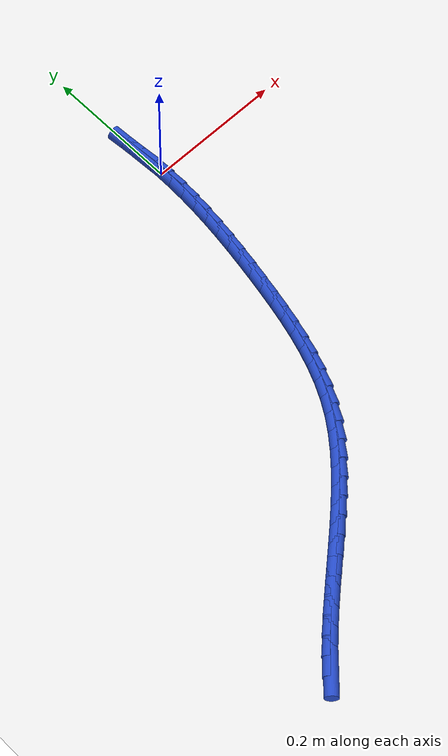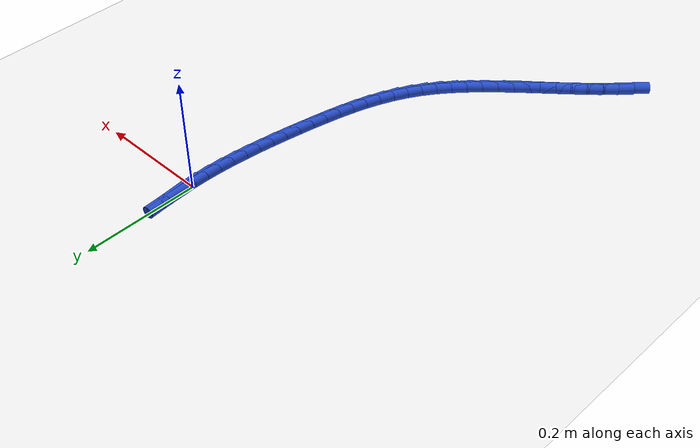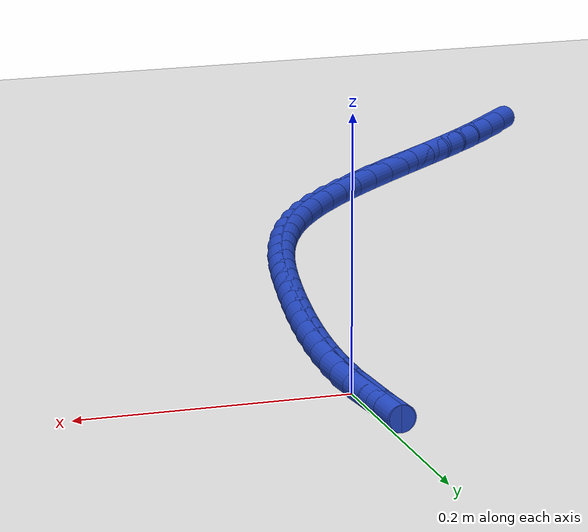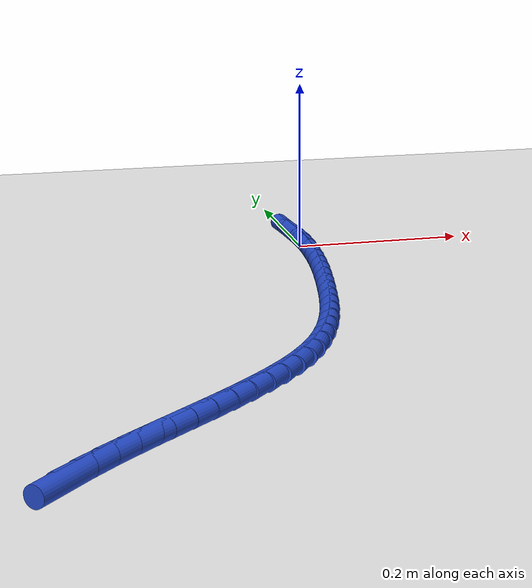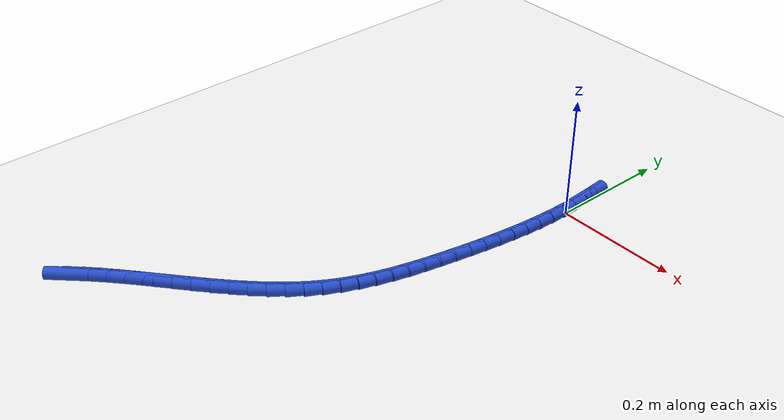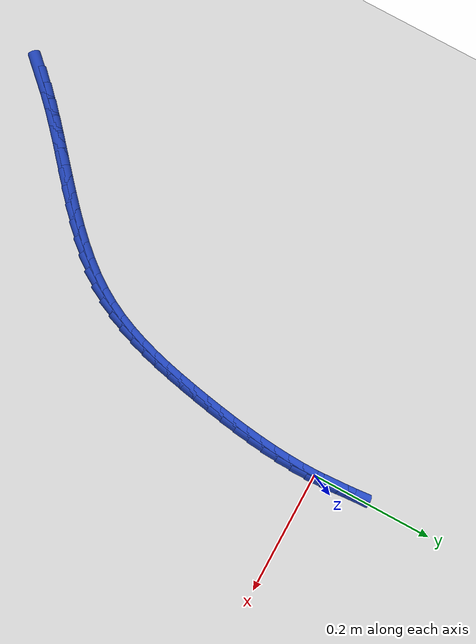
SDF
<sdf version="1.6">
 <world name="default">
  <model name="ground_plane">
   <static>1</static>
   <link name="link">
    <collision name="collision">
     <geometry><plane><normal>0 0 1</normal><size>100 100</size></plane></geometry>
     <surface><friction><ode><mu>100</mu><mu2>50</mu2></ode></friction></surface>
    </collision>
    <visual name="visual">
     <cast_shadows>0</cast_shadows>
     <geometry><plane><normal>0 0 1</normal><size>100 100</size></plane></geometry>
     <material>
      <script><uri>file://media/materials/scripts/gazebo.material</uri><name>Gazebo/WhiteGlow</name></script>
     </material>
    </visual>
   </link>
  </model>
  <model name="line">
   <link name="link_0">
    <pose>-7.806255641895632e-18 -2.0816681711721685e-17 0.01 0 1.57 -1.5404610374931598</pose>
    <collision name="collision">
     <geometry><cylinder><radius>0.01</radius><length>0.08</length></cylinder></geometry>
    </collision>
    <visual name="visual">
     <material>
      <script><name>Gazebo/Blue</name><uri>file://media/materials/scripts/gazebo.material</uri></script>
     </material>
     <geometry><cylinder><radius>0.01</radius><length>0.08</length></cylinder></geometry>
    </visual>
   </link>
   <link name="link_1">
    <pose>-0.0007810685125720414 0.025739952653974323 0.01 0 1.57 -1.5077645329489693</pose>
    <collision name="collision">
     <geometry><cylinder><radius>0.01</radius><length>0.08</length></cylinder></geometry>
    </collision>
    <visual name="visual">
     <material>
      <script><name>Gazebo/Blue</name><uri>file://media/materials/scripts/gazebo.material</uri></script>
     </material>
     <geometry><cylinder><radius>0.01</radius><length>0.08</length></cylinder></geometry>
    </visual>
   </link>
   <link name="link_2">
    <pose>-0.0024057646785755095 0.05148162766888762 0.01 0 1.57 -1.4805571677666232</pose>
    <collision name="collision">
     <geometry><cylinder><radius>0.01</radius><length>0.08</length></cylinder></geometry>
    </collision>
    <visual name="visual">
     <material>
      <script><name>Gazebo/Blue</name><uri>file://media/materials/scripts/gazebo.material</uri></script>
     </material>
     <geometry><cylinder><radius>0.01</radius><length>0.08</length></cylinder></geometry>
    </visual>
   </link>
   <link name="link_260">
    <pose>-0.3483220424559699 -0.6746312701577437 0.01 0 1.57 0.810414822637307</pose>
    <collision name="collision">
     <geometry><cylinder><radius>0.01</radius><length>0.08</length></cylinder></geometry>
    </collision>
    <visual name="visual">
     <material>
      <script><name>Gazebo/Blue</name><uri>file://media/materials/scripts/gazebo.material</uri></script>
     </material>
     <geometry><cylinder><radius>0.01</radius><length>0.08</length></cylinder></geometry>
    </visual>
   </link>
   <link name="link_261">
    <pose>-0.33001455332771323 -0.6553840926949344 0.01 0 1.57 0.7716440655538486</pose>
    <collision name="collision">
     <geometry><cylinder><radius>0.01</radius><length>0.08</length></cylinder></geometry>
    </collision>
    <visual name="visual">
     <material>
      <script><name>Gazebo/Blue</name><uri>file://media/materials/scripts/gazebo.material</uri></script>
     </material>
     <geometry><cylinder><radius>0.01</radius><length>0.08</length></cylinder></geometry>
    </visual>
   </link>
   <link name="link_262">
    <pose>-0.3106720200694595 -0.6365664513116892 0.01 0 1.57 0.7428475527422636</pose>
    <collision name="collision">
     <geometry><cylinder><radius>0.01</radius><length>0.08</length></cylinder></geometry>
    </collision>
    <visual name="visual">
     <material>
      <script><name>Gazebo/Blue</name><uri>file://media/materials/scripts/gazebo.material</uri></script>
     </material>
     <geometry><cylinder><radius>0.01</radius><length>0.08</length></cylinder></geometry>
    </visual>
   </link>
   <link name="link_263">
    <pose>-0.29052929833439456 -0.6180688902113378 0.01 0 1.57 0.7233898391511816</pose>
    <collision name="collision">
     <geometry><cylinder><radius>0.01</radius><length>0.08</length></cylinder></geometry>
    </collision>
    <visual name="visual">
     <material>
      <script><name>Gazebo/Blue</name><uri>file://media/materials/scripts/gazebo.material</uri></script>
     </material>
     <geometry><cylinder><radius>0.01</radius><length>0.08</length></cylinder></geometry>
    </visual>
   </link>
   <link name="link_264">
    <pose>-0.2698212437757043 -0.5997819535972095 0.01 0 1.57 0.7127964915039192</pose>
    <collision name="collision">
     <geometry><cylinder><radius>0.01</radius><length>0.08</length></cylinder></geometry>
    </collision>
    <visual name="visual">
     <material>
      <script><name>Gazebo/Blue</name><uri>file://media/materials/scripts/gazebo.material</uri></script>
     </material>
     <geometry><cylinder><radius>0.01</radius><length>0.08</length></cylinder></geometry>
    </visual>
   </link>
   <link name="link_265">
    <pose>-0.24878271204657537 -0.5815961856726339 0.01 0 1.57 0.710778965877923</pose>
    <collision name="collision">
     <geometry><cylinder><radius>0.01</radius><length>0.08</length></cylinder></geometry>
    </collision>
    <visual name="visual">
     <material>
      <script><name>Gazebo/Blue</name><uri>file://media/materials/scripts/gazebo.material</uri></script>
     </material>
     <geometry><cylinder><radius>0.01</radius><length>0.08</length></cylinder></geometry>
    </visual>
   </link>
   <link name="link_266">
    <pose>-0.2276485588001923 -0.5634021306409398 0.01 0 1.57 0.7172427543397212</pose>
    <collision name="collision">
     <geometry><cylinder><radius>0.01</radius><length>0.08</length></cylinder></geometry>
    </collision>
    <visual name="visual">
     <material>
      <script><name>Gazebo/Blue</name><uri>file://media/materials/scripts/gazebo.material</uri></script>
     </material>
     <geometry><cylinder><radius>0.01</radius><length>0.08</length></cylinder></geometry>
    </visual>
   </link>
   <link name="link_267">
    <pose>-0.20665363968974163 -0.5450903327054567 0.01 0 1.57 0.7322857019464921</pose>
    <collision name="collision">
     <geometry><cylinder><radius>0.01</radius><length>0.08</length></cylinder></geometry>
    </collision>
    <visual name="visual">
     <material>
      <script><name>Gazebo/Blue</name><uri>file://media/materials/scripts/gazebo.material</uri></script>
     </material>
     <geometry><cylinder><radius>0.01</radius><length>0.08</length></cylinder></geometry>
    </visual>
   </link>
   <link name="link_268">
    <pose>-0.18603281036840927 -0.5265513360695141 0.01 0 1.57 0.7561880432178371</pose>
    <collision name="collision">
     <geometry><cylinder><radius>0.01</radius><length>0.08</length></cylinder></geometry>
    </collision>
    <visual name="visual">
     <material>
      <script><name>Gazebo/Blue</name><uri>file://media/materials/scripts/gazebo.material</uri></script>
     </material>
     <geometry><cylinder><radius>0.01</radius><length>0.08</length></cylinder></geometry>
    </visual>
   </link>
   <link name="link_269">
    <pose>-0.16602092648938108 -0.5076756849364413 0.01 0 1.57 0.7893908484774422</pose>
    <collision name="collision">
     <geometry><cylinder><radius>0.01</radius><length>0.08</length></cylinder></geometry>
    </collision>
    <visual name="visual">
     <material>
      <script><name>Gazebo/Blue</name><uri>file://media/materials/scripts/gazebo.material</uri></script>
     </material>
     <geometry><cylinder><radius>0.01</radius><length>0.08</length></cylinder></geometry>
    </visual>
   </link>
   <link name="link_270">
    <pose>-0.14685284370584295 -0.4883539235095677 0.01 0 1.57 0.8324546394792258</pose>
    <collision name="collision">
     <geometry><cylinder><radius>0.01</radius><length>0.08</length></cylinder></geometry>
    </collision>
    <visual name="visual">
     <material>
      <script><name>Gazebo/Blue</name><uri>file://media/materials/scripts/gazebo.material</uri></script>
     </material>
     <geometry><cylinder><radius>0.01</radius><length>0.08</length></cylinder></geometry>
    </visual>
   </link>
   <link name="link_271">
    <pose>-0.12876341767098082 -0.46847659599222263 0.01 0 1.57 0.8859849626920132</pose>
    <collision name="collision">
     <geometry><cylinder><radius>0.01</radius><length>0.08</length></cylinder></geometry>
    </collision>
    <visual name="visual">
     <material>
      <script><name>Gazebo/Blue</name><uri>file://media/materials/scripts/gazebo.material</uri></script>
     </material>
     <geometry><cylinder><radius>0.01</radius><length>0.08</length></cylinder></geometry>
    </visual>
   </link>
   <link name="link_272">
    <pose>-0.11198750403798056 -0.4479342465877357 0.01 0 1.57 0.9505083079007879</pose>
    <collision name="collision">
     <geometry><cylinder><radius>0.01</radius><length>0.08</length></cylinder></geometry>
    </collision>
    <visual name="visual">
     <material>
      <script><name>Gazebo/Blue</name><uri>file://media/materials/scripts/gazebo.material</uri></script>
     </material>
     <geometry><cylinder><radius>0.01</radius><length>0.08</length></cylinder></geometry>
    </visual>
   </link>
   <link name="link_273">
    <pose>-0.09675995846002806 -0.4266174194994359 0.01 0 1.57 1.025266524240976</pose>
    <collision name="collision">
     <geometry><cylinder><radius>0.01</radius><length>0.08</length></cylinder></geometry>
    </collision>
    <visual name="visual">
     <material>
      <script><name>Gazebo/Blue</name><uri>file://media/materials/scripts/gazebo.material</uri></script>
     </material>
     <geometry><cylinder><radius>0.01</radius><length>0.08</length></cylinder></geometry>
    </visual>
   </link>
   <link name="link_274">
    <pose>-0.08329215274655745 -0.40442888696036344 0.01 0 1.57 1.0991313741359114</pose>
    <collision name="collision">
     <geometry><cylinder><radius>0.01</radius><length>0.08</length></cylinder></geometry>
    </collision>
    <visual name="visual">
     <material>
      <script><name>Gazebo/Blue</name><uri>file://media/materials/scripts/gazebo.material</uri></script>
     </material>
     <geometry><cylinder><radius>0.01</radius><length>0.08</length></cylinder></geometry>
    </visual>
   </link>
   <link name="link_275">
    <pose>-0.07154651962960286 -0.38140104369921063 0.01 0 1.57 1.1648577418972788</pose>
    <collision name="collision">
     <geometry><cylinder><radius>0.01</radius><length>0.08</length></cylinder></geometry>
    </collision>
    <visual name="visual">
     <material>
      <script><name>Gazebo/Blue</name><uri>file://media/materials/scripts/gazebo.material</uri></script>
     </material>
     <geometry><cylinder><radius>0.01</radius><length>0.08</length></cylinder></geometry>
    </visual>
   </link>
   <link name="link_276">
    <pose>-0.061335618649782785 -0.3576443233661018 0.01 0 1.57 1.2219398087314397</pose>
    <collision name="collision">
     <geometry><cylinder><radius>0.01</radius><length>0.08</length></cylinder></geometry>
    </collision>
    <visual name="visual">
     <material>
      <script><name>Gazebo/Blue</name><uri>file://media/materials/scripts/gazebo.material</uri></script>
     </material>
     <geometry><cylinder><radius>0.01</radius><length>0.08</length></cylinder></geometry>
    </visual>
   </link>
   <link name="link_277">
    <pose>-0.05246995222022912 -0.3332702307567666 0.01 0 1.57 1.270295466348242</pose>
    <collision name="collision">
     <geometry><cylinder><radius>0.01</radius><length>0.08</length></cylinder></geometry>
    </collision>
    <visual name="visual">
     <material>
      <script><name>Gazebo/Blue</name><uri>file://media/materials/scripts/gazebo.material</uri></script>
     </material>
     <geometry><cylinder><radius>0.01</radius><length>0.08</length></cylinder></geometry>
    </visual>
   </link>
   <link name="link_278">
    <pose>-0.04476002275407376 -0.3083902706669345 0.01 0 1.57 1.3100509610701345</pose>
    <collision name="collision">
     <geometry><cylinder><radius>0.01</radius><length>0.08</length></cylinder></geometry>
    </collision>
    <visual name="visual">
     <material>
      <script><name>Gazebo/Blue</name><uri>file://media/materials/scripts/gazebo.material</uri></script>
     </material>
     <geometry><cylinder><radius>0.01</radius><length>0.08</length></cylinder></geometry>
    </visual>
   </link>
   <link name="link_279">
    <pose>-0.03801633266444859 -0.283115947892335 0.01 0 1.57 1.341430582156113</pose>
    <collision name="collision">
     <geometry><cylinder><radius>0.01</radius><length>0.08</length></cylinder></geometry>
    </collision>
    <visual name="visual">
     <material>
      <script><name>Gazebo/Blue</name><uri>file://media/materials/scripts/gazebo.material</uri></script>
     </material>
     <geometry><cylinder><radius>0.01</radius><length>0.08</length></cylinder></geometry>
    </visual>
   </link>
   <link name="link_280">
    <pose>-0.032049384364485706 -0.25755876722869864 0.01 0 1.57 1.3646712019935838</pose>
    <collision name="collision">
     <geometry><cylinder><radius>0.01</radius><length>0.08</length></cylinder></geometry>
    </collision>
    <visual name="visual">
     <material>
      <script><name>Gazebo/Blue</name><uri>file://media/materials/scripts/gazebo.material</uri></script>
     </material>
     <geometry><cylinder><radius>0.01</radius><length>0.08</length></cylinder></geometry>
    </visual>
   </link>
   <link name="link_281">
    <pose>-0.026669680267316587 -0.23183023347175313 0.01 0 1.57 1.3800376828256702</pose>
    <collision name="collision">
     <geometry><cylinder><radius>0.01</radius><length>0.08</length></cylinder></geometry>
    </collision>
    <visual name="visual">
     <material>
      <script><name>Gazebo/Blue</name><uri>file://media/materials/scripts/gazebo.material</uri></script>
     </material>
     <geometry><cylinder><radius>0.01</radius><length>0.08</length></cylinder></geometry>
    </visual>
   </link>
   <link name="link_282">
    <pose>-0.021689620932654214 -0.20604106893402807 0.01 0 1.57 1.3918290117353656</pose>
    <collision name="collision">
     <geometry><cylinder><radius>0.01</radius><length>0.08</length></cylinder></geometry>
    </collision>
    <visual name="visual">
     <material>
      <script><name>Gazebo/Blue</name><uri>file://media/materials/scripts/gazebo.material</uri></script>
     </material>
     <geometry><cylinder><radius>0.01</radius><length>0.08</length></cylinder></geometry>
    </visual>
   </link>
   <link name="link_283">
    <pose>-0.017025594470649698 -0.18025912857937731 0.01 0 1.57 1.4063764953381221</pose>
    <collision name="collision">
     <geometry><cylinder><radius>0.01</radius><length>0.08</length></cylinder></geometry>
    </collision>
    <visual name="visual">
     <material>
      <script><name>Gazebo/Blue</name><uri>file://media/materials/scripts/gazebo.material</uri></script>
     </material>
     <geometry><cylinder><radius>0.01</radius><length>0.08</length></cylinder></geometry>
    </visual>
   </link>
   <link name="link_284">
    <pose>-0.012749720475785627 -0.1544880693420797 0.01 0 1.57 1.4242398456095378</pose>
    <collision name="collision">
     <geometry><cylinder><radius>0.01</radius><length>0.08</length></cylinder></geometry>
    </collision>
    <visual name="visual">
     <material>
      <script><name>Gazebo/Blue</name><uri>file://media/materials/scripts/gazebo.material</uri></script>
     </material>
     <geometry><cylinder><radius>0.01</radius><length>0.08</length></cylinder></geometry>
    </visual>
   </link>
   <link name="link_285">
    <pose>-0.008946897549552172 -0.12872628019744398 0.01 0 1.57 1.445462462079666</pose>
    <collision name="collision">
     <geometry><cylinder><radius>0.01</radius><length>0.08</length></cylinder></geometry>
    </collision>
    <visual name="visual">
     <material>
      <script><name>Gazebo/Blue</name><uri>file://media/materials/scripts/gazebo.material</uri></script>
     </material>
     <geometry><cylinder><radius>0.01</radius><length>0.08</length></cylinder></geometry>
    </visual>
   </link>
   <link name="link_286">
    <pose>-0.005702024293439496 -0.10297215012077889 0.01 0 1.57 1.4700812088517399</pose>
    <collision name="collision">
     <geometry><cylinder><radius>0.01</radius><length>0.08</length></cylinder></geometry>
    </collision>
    <visual name="visual">
     <material>
      <script><name>Gazebo/Blue</name><uri>file://media/materials/scripts/gazebo.material</uri></script>
     </material>
     <geometry><cylinder><radius>0.01</radius><length>0.08</length></cylinder></geometry>
    </visual>
   </link>
   <link name="link_287">
    <pose>-0.003099999308937773 -0.07722406808739321 0.01 0 1.57 1.498119090111464</pose>
    <collision name="collision">
     <geometry><cylinder><radius>0.01</radius><length>0.08</length></cylinder></geometry>
    </collision>
    <visual name="visual">
     <material>
      <script><name>Gazebo/Blue</name><uri>file://media/materials/scripts/gazebo.material</uri></script>
     </material>
     <geometry><cylinder><radius>0.01</radius><length>0.08</length></cylinder></geometry>
    </visual>
   </link>
   <link name="link_288">
    <pose>-0.0012257211975371706 -0.05148042307259565 0.01 0 1.57 1.5295765309308473</pose>
    <collision name="collision">
     <geometry><cylinder><radius>0.01</radius><length>0.08</length></cylinder></geometry>
    </collision>
    <visual name="visual">
     <material>
      <script><name>Gazebo/Blue</name><uri>file://media/materials/scripts/gazebo.material</uri></script>
     </material>
     <geometry><cylinder><radius>0.01</radius><length>0.08</length></cylinder></geometry>
    </visual>
   </link>
   <link name="link_289">
    <pose>-0.00016408856072785494 -0.025739604051694946 0.01 0 1.57 1.5644214681294863</pose>
    <collision name="collision">
     <geometry><cylinder><radius>0.01</radius><length>0.08</length></cylinder></geometry>
    </collision>
    <visual name="visual">
     <material>
      <script><name>Gazebo/Blue</name><uri>file://media/materials/scripts/gazebo.material</uri></script>
     </material>
     <geometry><cylinder><radius>0.01</radius><length>0.08</length></cylinder></geometry>
    </visual>
   </link>
   <link name="link_290">
    <pose>3.469446951953614e-18 1.1796119636642288e-16 0.01 0 1.57 -1.5390139433597283</pose>
    <collision name="collision">
     <geometry><cylinder><radius>0.01</radius><length>0.08</length></cylinder></geometry>
    </collision>
    <visual name="visual">
     <material>
      <script><name>Gazebo/Blue</name><uri>file://media/materials/scripts/gazebo.material</uri></script>
     </material>
     <geometry><cylinder><radius>0.01</radius><length>0.08</length></cylinder></geometry>
    </visual>
   </link>
   <link name="link_291">
    <pose>-0.0008183541168437182 0.02574000010718001 0.01 0 1.57 -1.497673308028414</pose>
    <collision name="collision">
     <geometry><cylinder><radius>0.01</radius><length>0.08</length></cylinder></geometry>
    </collision>
    <visual name="visual">
     <material>
      <script><name>Gazebo/Blue</name><uri>file://media/materials/scripts/gazebo.material</uri></script>
     </material>
     <geometry><cylinder><radius>0.01</radius><length>0.08</length></cylinder></geometry>
    </visual>
   </link>
   <link name="link_292">
    <pose>-0.0027040495127493196 0.05148200729453846 0.01 0 1.57 -1.5183203817118152</pose>
    <collision name="collision">
     <geometry><cylinder><radius>0.01</radius><length>0.08</length></cylinder></geometry>
    </collision>
    <visual name="visual">
     <material>
      <script><name>Gazebo/Blue</name><uri>file://media/materials/scripts/gazebo.material</uri></script>
     </material>
     <geometry><cylinder><radius>0.01</radius><length>0.08</length></cylinder></geometry>
    </visual>
   </link>
  </model>
 </world>
</sdf>
